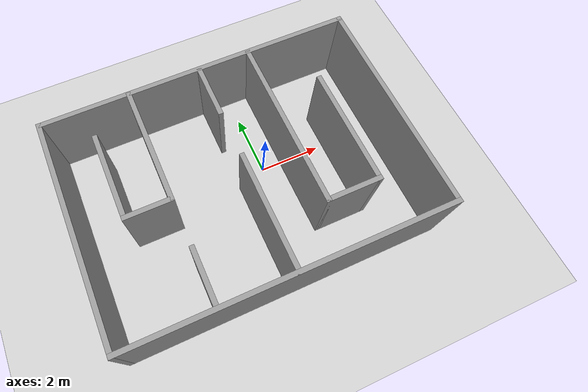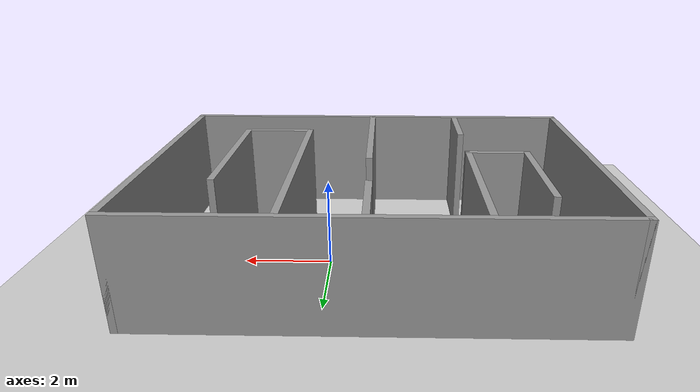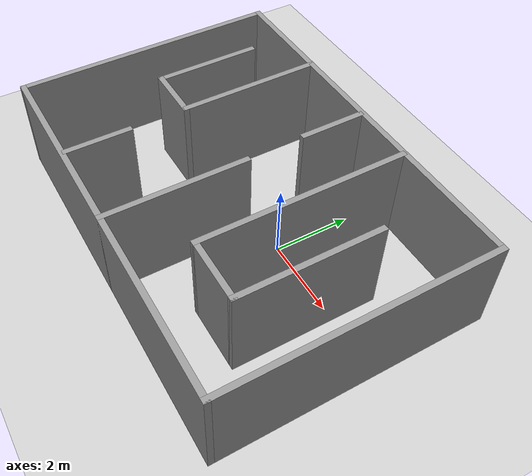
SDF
<sdf version="1.7">
 <world name="default">
  <light name="sun" type="directional">
   <pose>0 0 10 0 -0 0</pose>
   <diffuse>0.8 0.8 0.8 1</diffuse>
   <specular>0.2 0.2 0.2 1</specular>
   <attenuation>
    <range>1000</range>
    <constant>0.9</constant>
    <linear>0.01</linear>
    <quadratic>0.001</quadratic>
   </attenuation>
   <direction>-0.5 0.1 -0.9</direction>
   <spot><inner_angle>0</inner_angle><outer_angle>0</outer_angle><falloff>0</falloff></spot>
  </light>
  <model name="ground_plane">
   <static>1</static>
   <link name="link">
    <collision name="collision">
     <geometry><plane><normal>0 0 1</normal><size>100 100</size></plane></geometry>
     <surface><friction><ode><mu>100</mu><mu2>50</mu2></ode></friction></surface>
    </collision>
    <visual name="visual">
     <cast_shadows>0</cast_shadows>
     <geometry><plane><normal>0 0 1</normal><size>100 100</size></plane></geometry>
     <material>
      <script><uri>file://media/materials/scripts/gazebo.material</uri><name>Gazebo/Grey</name></script>
     </material>
    </visual>
   </link>
  </model>
  <gravity>0 0 -9.8</gravity>
  <magnetic_field>6e-06 2.3e-05 -4.2e-05</magnetic_field>
  <atmosphere type="adiabatic"/>
  <physics type="ode">
   <max_step_size>0.001</max_step_size>
   <real_time_factor>1</real_time_factor>
   <real_time_update_rate>1000</real_time_update_rate>
  </physics>
  <scene><ambient>0.4 0.4 0.4 1</ambient><background>0.7 0.7 0.7 1</background><shadows>1</shadows></scene>
  <spherical_coordinates>
   <surface_model>EARTH_WGS84</surface_model>
   <latitude_deg>0</latitude_deg>
   <longitude_deg>0</longitude_deg>
   <elevation>0</elevation>
   <heading_deg>0</heading_deg>
  </spherical_coordinates>
  <model name="migong">
   <pose>-1.00346 1.35359 0 0 -0 0</pose>
   <link name="Wall_0">
    <collision name="Wall_0_Collision">
     <geometry><box><size>10 0.15 2.5</size></box></geometry>
     <pose>0 0 1.25 0 -0 0</pose>
    </collision>
    <visual name="Wall_0_Visual">
     <pose>0 0 1.25 0 -0 0</pose>
     <geometry><box><size>10 0.15 2.5</size></box></geometry>
     <material>
      <script><uri>file://media/materials/scripts/gazebo.material</uri><name>Gazebo/Grey</name></script>
      <ambient>1 1 1 1</ambient>
     </material>
     <meta><layer>0</layer></meta>
    </visual>
    <pose>0 1.5275 0 0 -0 0</pose>
   </link>
   <link name="Wall_1">
    <collision name="Wall_1_Collision">
     <geometry><box><size>7 0.15 2.5</size></box></geometry>
     <pose>0 0 1.25 0 -0 0</pose>
    </collision>
    <visual name="Wall_1_Visual">
     <pose>0 0 1.25 0 -0 0</pose>
     <geometry><box><size>7 0.15 2.5</size></box></geometry>
     <material>
      <script><uri>file://media/materials/scripts/gazebo.material</uri><name>Gazebo/Grey</name></script>
      <ambient>1 1 1 1</ambient>
     </material>
     <meta><layer>0</layer></meta>
    </visual>
    <pose>4.925 -1.8975 0 0 -0 -1.5708</pose>
   </link>
   <link name="Wall_15">
    <collision name="Wall_15_Collision">
     <geometry><box><size>1.75 0.15 2.5</size></box></geometry>
     <pose>0 0 1.25 0 -0 0</pose>
    </collision>
    <visual name="Wall_15_Visual">
     <pose>0 0 1.25 0 -0 0</pose>
     <geometry><box><size>1.75 0.15 2.5</size></box></geometry>
     <material>
      <script><uri>file://media/materials/scripts/gazebo.material</uri><name>Gazebo/Grey</name></script>
      <ambient>1 1 1 1</ambient>
     </material>
     <meta><layer>0</layer></meta>
    </visual>
    <pose>0.065 0.6475 0 0 -0 -1.5708</pose>
   </link>
   <link name="Wall_19">
    <collision name="Wall_19_Collision">
     <geometry><box><size>5.5 0.15 2.5</size></box></geometry>
     <pose>0 0 1.25 0 -0 0</pose>
    </collision>
    <visual name="Wall_19_Visual">
     <pose>0 0 1.25 0 -0 0</pose>
     <geometry><box><size>5.5 0.15 2.5</size></box></geometry>
     <material>
      <script><uri>file://media/materials/scripts/gazebo.material</uri><name>Gazebo/Grey</name></script>
      <ambient>1 1 1 1</ambient>
     </material>
     <meta><layer>0</layer></meta>
    </visual>
    <pose>1.695 -1.1975 0 0 -0 -1.5708</pose>
   </link>
   <link name="Wall_2">
    <collision name="Wall_2_Collision">
     <geometry><box><size>10 0.15 2.5</size></box></geometry>
     <pose>0 0 1.25 0 -0 0</pose>
    </collision>
    <visual name="Wall_2_Visual">
     <pose>0 0 1.25 0 -0 0</pose>
     <geometry><box><size>10 0.15 2.5</size></box></geometry>
     <material>
      <script><uri>file://media/materials/scripts/gazebo.material</uri><name>Gazebo/Grey</name></script>
      <ambient>1 1 1 1</ambient>
     </material>
     <meta><layer>0</layer></meta>
    </visual>
    <pose>0 -5.3225 0 0 -0 3.14159</pose>
   </link>
   <link name="Wall_20">
    <collision name="Wall_20_Collision">
     <geometry><box><size>1.75 0.15 2.5</size></box></geometry>
     <pose>0 0 1.25 0 -0 0</pose>
    </collision>
    <visual name="Wall_20_Visual">
     <pose>0 0 1.25 0 -0 0</pose>
     <geometry><box><size>1.75 0.15 2.5</size></box></geometry>
     <material>
      <script><uri>file://media/materials/scripts/gazebo.material</uri><name>Gazebo/Grey</name></script>
      <ambient>1 1 1 1</ambient>
     </material>
     <meta><layer>0</layer></meta>
    </visual>
    <pose>2.495 -3.8725 0 0 -0 0</pose>
   </link>
   <link name="Wall_21">
    <collision name="Wall_21_Collision">
     <geometry><box><size>3.75 0.15 2.5</size></box></geometry>
     <pose>0 0 1.25 0 -0 0</pose>
    </collision>
    <visual name="Wall_21_Visual">
     <pose>0 0 1.25 0 -0 0</pose>
     <geometry><box><size>3.75 0.15 2.5</size></box></geometry>
     <material>
      <script><uri>file://media/materials/scripts/gazebo.material</uri><name>Gazebo/Grey</name></script>
      <ambient>1 1 1 1</ambient>
     </material>
     <meta><layer>0</layer></meta>
    </visual>
    <pose>3.295 -2.0725 0 0 -0 1.5708</pose>
   </link>
   <link name="Wall_24">
    <collision name="Wall_24_Collision">
     <geometry><box><size>3.75 0.15 2.5</size></box></geometry>
     <pose>0 0 1.25 0 -0 0</pose>
    </collision>
    <visual name="Wall_24_Visual">
     <pose>0 0 1.25 0 -0 0</pose>
     <geometry><box><size>3.75 0.15 2.5</size></box></geometry>
     <material>
      <script><uri>file://media/materials/scripts/gazebo.material</uri><name>Gazebo/Grey</name></script>
      <ambient>1 1 1 1</ambient>
     </material>
     <meta><layer>0</layer></meta>
    </visual>
    <pose>0.095 -3.5225 0 0 -0 -1.5708</pose>
   </link>
   <link name="Wall_3">
    <collision name="Wall_3_Collision">
     <geometry><box><size>7 0.15 2.5</size></box></geometry>
     <pose>0 0 1.25 0 -0 0</pose>
    </collision>
    <visual name="Wall_3_Visual">
     <pose>0 0 1.25 0 -0 0</pose>
     <geometry><box><size>7 0.15 2.5</size></box></geometry>
     <material>
      <script><uri>file://media/materials/scripts/gazebo.material</uri><name>Gazebo/Grey</name></script>
      <ambient>1 1 1 1</ambient>
     </material>
     <meta><layer>0</layer></meta>
    </visual>
    <pose>-4.925 -1.8975 0 0 -0 1.5708</pose>
   </link>
   <link name="Wall_5">
    <collision name="Wall_5_Collision">
     <geometry><box><size>3.76 0.15 2.5</size></box></geometry>
     <pose>0 0 1.25 0 -0 0</pose>
    </collision>
    <visual name="Wall_5_Visual">
     <pose>0 0 1.25 0 -0 0</pose>
     <geometry><box><size>3.76 0.15 2.5</size></box></geometry>
     <material>
      <script><uri>file://media/materials/scripts/gazebo.material</uri><name>Gazebo/Grey</name></script>
      <ambient>1 1 1 1</ambient>
     </material>
     <meta><layer>0</layer></meta>
    </visual>
    <pose>-2.195 -0.3075 0 0 -0 -1.5708</pose>
   </link>
   <link name="Wall_6">
    <collision name="Wall_6_Collision">
     <geometry><box><size>1.5 0.15 2.5</size></box></geometry>
     <pose>0 0 1.25 0 -0 0</pose>
    </collision>
    <visual name="Wall_6_Visual">
     <pose>0 0 1.25 0 -0 0</pose>
     <geometry><box><size>1.5 0.15 2.5</size></box></geometry>
     <material>
      <script><uri>file://media/materials/scripts/gazebo.material</uri><name>Gazebo/Grey</name></script>
      <ambient>1 1 1 1</ambient>
     </material>
     <meta><layer>0</layer></meta>
    </visual>
    <pose>-2.87 -2.1425 0 0 -0 3.14159</pose>
   </link>
   <link name="Wall_7">
    <collision name="Wall_7_Collision">
     <geometry><box><size>2.76 0.15 2.5</size></box></geometry>
     <pose>0 0 1.25 0 -0 0</pose>
    </collision>
    <visual name="Wall_7_Visual">
     <pose>0 0 1.25 0 -0 0</pose>
     <geometry><box><size>2.76 0.15 2.5</size></box></geometry>
     <material>
      <script><uri>file://media/materials/scripts/gazebo.material</uri><name>Gazebo/Grey</name></script>
      <ambient>1 1 1 1</ambient>
     </material>
     <meta><layer>0</layer></meta>
    </visual>
    <pose>-3.545 -0.8075 0 0 -0 1.5708</pose>
   </link>
   <link name="Wall_9">
    <collision name="Wall_9_Collision">
     <geometry><box><size>1.75 0.15 2.5</size></box></geometry>
     <pose>0 0 1.25 0 -0 0</pose>
    </collision>
    <visual name="Wall_9_Visual">
     <pose>0 0 1.25 0 -0 0</pose>
     <geometry><box><size>1.75 0.15 2.5</size></box></geometry>
     <material>
      <script><uri>file://media/materials/scripts/gazebo.material</uri><name>Gazebo/Grey</name></script>
      <ambient>1 1 1 1</ambient>
     </material>
     <meta><layer>0</layer></meta>
    </visual>
    <pose>-2.175 -4.4425 0 0 -0 -1.5708</pose>
   </link>
   <static>1</static>
  </model>
 </world>
</sdf>
